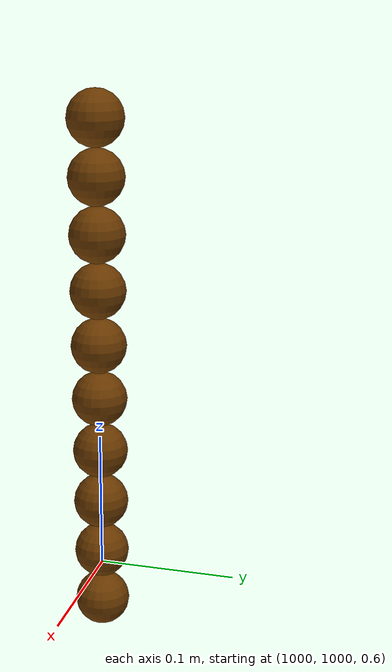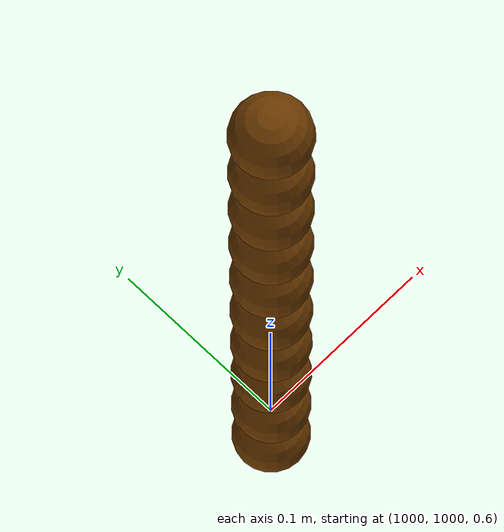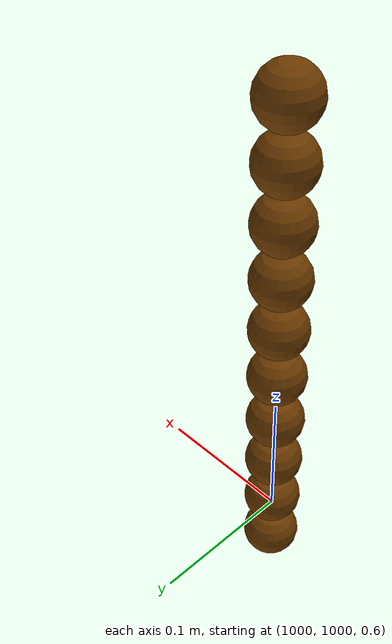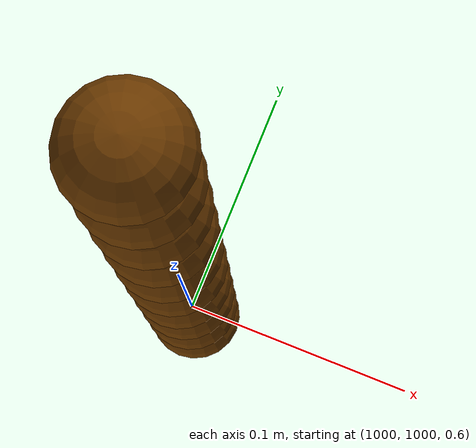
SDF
<sdf version="1.6">
 <world name="waves">
  <plugin filename="gz-sim-physics-system" name="gz::sim::systems::Physics"/>
  <plugin filename="gz-sim-sensors-system" name="gz::sim::systems::Sensors">
   <render_engine>ogre2</render_engine>
   <background_color>0.8 0.8 0.8</background_color>
  </plugin>
  <plugin filename="gz-sim-scene-broadcaster-system" name="gz::sim::systems::SceneBroadcaster"/>
  <plugin filename="gz-sim-user-commands-system" name="gz::sim::systems::UserCommands"/>
  <plugin filename="gz-sim-imu-system" name="gz::sim::systems::Imu"/>
  <plugin filename="asv_sim2-anemometer-system" name="gz::sim::systems::Anemometer"/>
  <plugin filename="gz-sim-wind-effects-system" name="gz::sim::systems::WindEffects">
   <force_approximation_scaling_factor>1.0</force_approximation_scaling_factor>
   <horizontal>
    <magnitude>
     <time_for_rise>10</time_for_rise>
     <sin><amplitude_percent>0.05</amplitude_percent><period>60</period></sin>
     <noise type="gaussian"><mean>0</mean><stddev>0.0002</stddev></noise>
    </magnitude>
    <direction>
     <time_for_rise>30</time_for_rise>
     <sin><amplitude>5</amplitude><period>20</period></sin>
     <noise type="gaussian"><mean>0</mean><stddev>0.03</stddev></noise>
    </direction>
   </horizontal>
   <vertical><noise type="gaussian"><mean>0</mean><stddev>0.03</stddev></noise></vertical>
  </plugin>
  <scene><ambient>1.0 1.0 1.0</ambient><background>0.8 0.8 0.8</background></scene>
  <light type="directional" name="sun">
   <pose>0 0 10 0 0 0</pose>
   <diffuse>0.8 0.8 0.8 1</diffuse>
   <specular>0.6 0.6 0.6 1</specular>
   <direction>-0.5 0.1 -0.9</direction>
  </light>
  <wind><linear_velocity>0 8 0</linear_velocity></wind>
  <model name="wind_sock">
   <pose>1000 1000 0 0 0 0</pose>
   <static>false</static>
   <enable_wind>true</enable_wind>
   <self_collide>true</self_collide>
   <link name="roof">
    <pose>0 0 1 0 0 0</pose>
    <collision name="collision">
     <geometry><box><size>1 1 0.1</size></box></geometry>
     <surface><friction><ode><mu>0.1</mu><mu2>0</mu2></ode></friction></surface>
    </collision>
   </link>
   <joint name="roofJoint" type="fixed"><parent>world</parent><child>roof</child></joint>
   <link name="sphere_1">
    <pose>0 0 0.93 0 0 0</pose>
    <enable_wind>true</enable_wind>
    <collision name="collision"><geometry><sphere><radius>0.02</radius></sphere></geometry></collision>
    <visual name="visual">
     <geometry><sphere><radius>0.02</radius></sphere></geometry>
     <material>
      <ambient>1.0 0 0 1.0</ambient>
      <diffuse>.421 0.225 0.0 1.0</diffuse>
      <specular>1.0 0 0 1.0</specular>
     </material>
    </visual>
   </link>
   <joint name="sphere_1_joint" type="ball"><parent>roof</parent><child>sphere_1</child></joint>
   <link name="sphere_2">
    <pose>0 0 0.89 0 0 0</pose>
    <enable_wind>true</enable_wind>
    <collision name="collision"><geometry><sphere><radius>0.02</radius></sphere></geometry></collision>
    <visual name="visual">
     <geometry><sphere><radius>0.02</radius></sphere></geometry>
     <material>
      <ambient>1.0 0 0 1.0</ambient>
      <diffuse>.421 0.225 0.0 1.0</diffuse>
      <specular>1.0 0 0 1.0</specular>
     </material>
    </visual>
   </link>
   <joint name="sphere_2_joint" type="ball"><parent>sphere_1</parent><child>sphere_2</child></joint>
   <link name="sphere_3">
    <pose>0 0 0.85 0 0 0</pose>
    <enable_wind>true</enable_wind>
    <collision name="collision"><geometry><sphere><radius>0.02</radius></sphere></geometry></collision>
    <visual name="visual">
     <geometry><sphere><radius>0.02</radius></sphere></geometry>
     <material>
      <ambient>1.0 0 0 1.0</ambient>
      <diffuse>.421 0.225 0.0 1.0</diffuse>
      <specular>1.0 0 0 1.0</specular>
     </material>
    </visual>
   </link>
   <joint name="sphere_3_joint" type="ball"><parent>sphere_2</parent><child>sphere_3</child></joint>
   <link name="sphere_4">
    <pose>0 0 0.81 0 0 0</pose>
    <enable_wind>true</enable_wind>
    <collision name="collision"><geometry><sphere><radius>0.02</radius></sphere></geometry></collision>
    <visual name="visual">
     <geometry><sphere><radius>0.02</radius></sphere></geometry>
     <material>
      <ambient>1.0 0 0 1.0</ambient>
      <diffuse>.421 0.225 0.0 1.0</diffuse>
      <specular>1.0 0 0 1.0</specular>
     </material>
    </visual>
   </link>
   <joint name="sphere_4_joint" type="ball"><parent>sphere_3</parent><child>sphere_4</child></joint>
   <link name="sphere_5">
    <pose>0 0 0.77 0 0 0</pose>
    <enable_wind>true</enable_wind>
    <collision name="collision"><geometry><sphere><radius>0.02</radius></sphere></geometry></collision>
    <visual name="visual">
     <geometry><sphere><radius>0.02</radius></sphere></geometry>
     <material>
      <ambient>1.0 0 0 1.0</ambient>
      <diffuse>.421 0.225 0.0 1.0</diffuse>
      <specular>1.0 0 0 1.0</specular>
     </material>
    </visual>
   </link>
   <joint name="sphere_5_joint" type="ball"><parent>sphere_4</parent><child>sphere_5</child></joint>
   <link name="sphere_6">
    <pose>0 0 0.73 0 0 0</pose>
    <enable_wind>true</enable_wind>
    <collision name="collision"><geometry><sphere><radius>0.02</radius></sphere></geometry></collision>
    <visual name="visual">
     <geometry><sphere><radius>0.02</radius></sphere></geometry>
     <material>
      <ambient>1.0 0 0 1.0</ambient>
      <diffuse>.421 0.225 0.0 1.0</diffuse>
      <specular>1.0 0 0 1.0</specular>
     </material>
    </visual>
   </link>
   <joint name="sphere_6_joint" type="ball"><parent>sphere_5</parent><child>sphere_6</child></joint>
   <link name="sphere_7">
    <pose>0 0 0.69 0 0 0</pose>
    <enable_wind>true</enable_wind>
    <collision name="collision"><geometry><sphere><radius>0.02</radius></sphere></geometry></collision>
    <visual name="visual">
     <geometry><sphere><radius>0.02</radius></sphere></geometry>
     <material>
      <ambient>1.0 0 0 1.0</ambient>
      <diffuse>.421 0.225 0.0 1.0</diffuse>
      <specular>1.0 0 0 1.0</specular>
     </material>
    </visual>
   </link>
   <joint name="sphere_7_joint" type="ball"><parent>sphere_6</parent><child>sphere_7</child></joint>
   <link name="sphere_8">
    <pose>0 0 0.65 0 0 0</pose>
    <enable_wind>true</enable_wind>
    <collision name="collision"><geometry><sphere><radius>0.02</radius></sphere></geometry></collision>
    <visual name="visual">
     <geometry><sphere><radius>0.02</radius></sphere></geometry>
     <material>
      <ambient>1.0 0 0 1.0</ambient>
      <diffuse>.421 0.225 0.0 1.0</diffuse>
      <specular>1.0 0 0 1.0</specular>
     </material>
    </visual>
   </link>
   <joint name="sphere_8_joint" type="ball"><parent>sphere_7</parent><child>sphere_8</child></joint>
   <link name="sphere_9">
    <pose>0 0 0.61 0 0 0</pose>
    <enable_wind>true</enable_wind>
    <collision name="collision"><geometry><sphere><radius>0.02</radius></sphere></geometry></collision>
    <visual name="visual">
     <geometry><sphere><radius>0.02</radius></sphere></geometry>
     <material>
      <ambient>1.0 0 0 1.0</ambient>
      <diffuse>.421 0.225 0.0 1.0</diffuse>
      <specular>1.0 0 0 1.0</specular>
     </material>
    </visual>
   </link>
   <joint name="sphere_9_joint" type="ball"><parent>sphere_8</parent><child>sphere_9</child></joint>
   <link name="sphere_10">
    <pose>0 0 0.57 0 0 0</pose>
    <enable_wind>true</enable_wind>
    <collision name="collision"><geometry><sphere><radius>0.02</radius></sphere></geometry></collision>
    <visual name="visual">
     <geometry><sphere><radius>0.02</radius></sphere></geometry>
     <material>
      <ambient>1.0 0 0 1.0</ambient>
      <diffuse>.421 0.225 0.0 1.0</diffuse>
      <specular>1.0 0 0 1.0</specular>
     </material>
    </visual>
   </link>
   <joint name="sphere_10_joint" type="ball"><parent>sphere_9</parent><child>sphere_10</child></joint>
  </model>
 </world>
</sdf>
